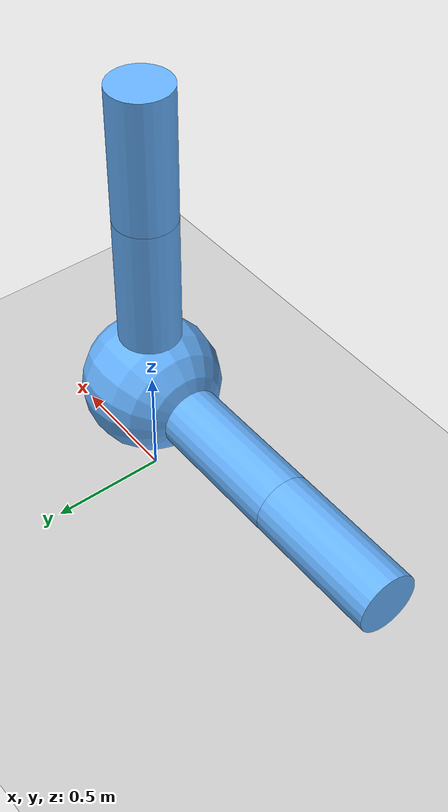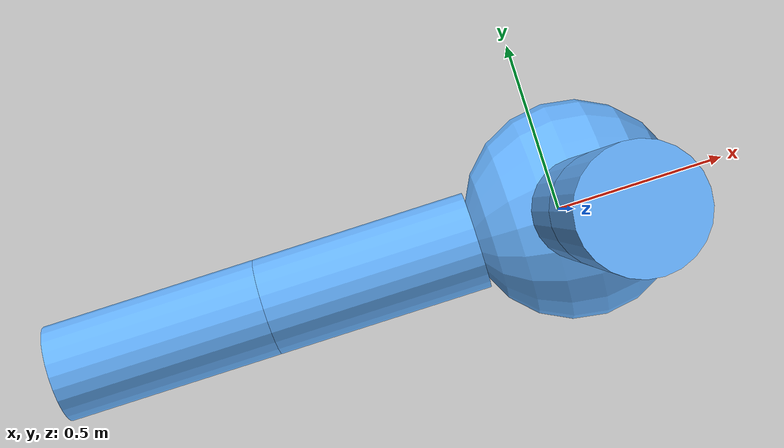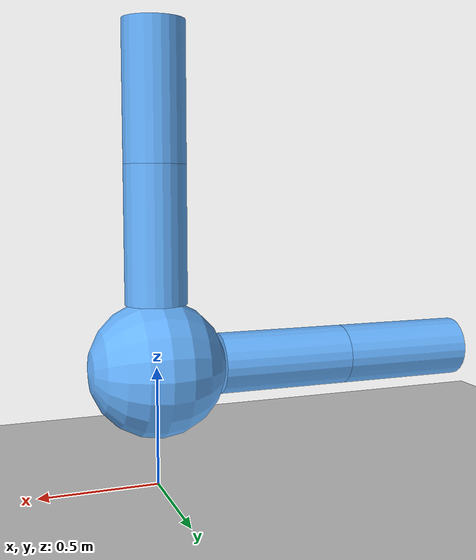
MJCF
<mujoco><option gravity="0 0 -50" /><worldbody><light diffuse="0.5 0.5 0.6" pos="0 2 3" dir="0 -0.5 -1" /><geom type="plane" size="5 5 0.1" rgba="0.8 0.8 0.8 1" /><body name="mainbody" pos="0 0 0.5" euler="0 90 0"><joint type="free" /><geom type="sphere" size="0.29000000000000004 0.29000000000000004 0.29000000000000004" rgba="0.4 0.7 1.5 1.0" /><body name="leg0" pos="-0.56 0 0" euler="0 90 0"><joint name="leg0_joint" type="hinge" pos="0 0 0.29" axis="0 90 0" range="-61 61" /><geom type="cylinder" size="0.13 0.29 0.29" rgba="0.4 0.7 1.5 1.0" /><body name="leg0_seg0" pos="0 0 -0.58" euler="0 0 0"><joint name="leg0_seg0_joint" type="hinge" pos="0 0 0.29" axis="0 90 0" range="-61 61" /><geom type="cylinder" size="0.13 0.29 0.29" rgba="0.4 0.7 1.5 1.0" /></body></body><body name="leg1" pos="0 0 -0.56" euler="0 0 0"><joint name="leg1_joint" type="hinge" pos="0 0 0.29" axis="0 90 0" range="-37 37" /><geom type="cylinder" size="0.13 0.29 0.29" rgba="0.4 0.7 1.5 1.0" /><body name="leg1_seg0" pos="0 0 -0.58" euler="0 0 0"><joint name="leg1_seg0_joint" type="hinge" pos="0 0 0.29" axis="0 90 0" range="-37 37" /><geom type="cylinder" size="0.13 0.29 0.29" rgba="0.4 0.7 1.5 1.0" /></body></body><body name="leg2" pos="0 0 -0.56" euler="0 0 0"><joint name="leg2_joint" type="hinge" pos="0 0 0.29" axis="0 90 0" range="-68 68" /><geom type="cylinder" size="0.13 0.29 0.29" rgba="0.4 0.7 1.5 1.0" /><body name="leg2_seg0" pos="0 0 -0.58" euler="0 0 0"><joint name="leg2_seg0_joint" type="hinge" pos="0 0 0.29" axis="0 90 0" range="-68 68" /><geom type="cylinder" size="0.13 0.29 0.29" rgba="0.4 0.7 1.5 1.0" /></body></body></body></worldbody><actuator><motor gear="100" joint="leg0_joint" /><motor gear="100" joint="leg1_joint" /><motor gear="100" joint="leg2_joint" /></actuator></mujoco>
